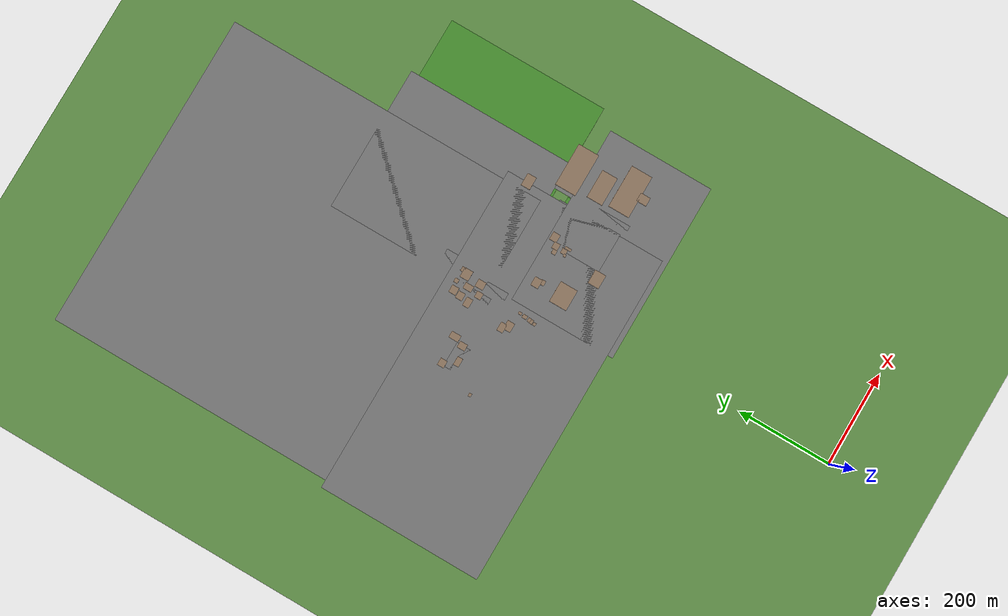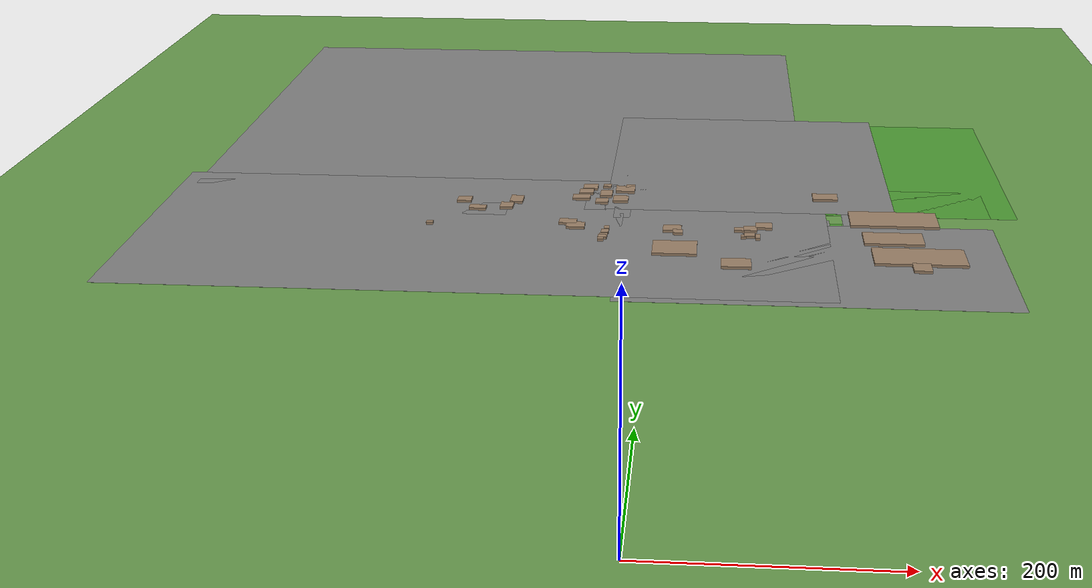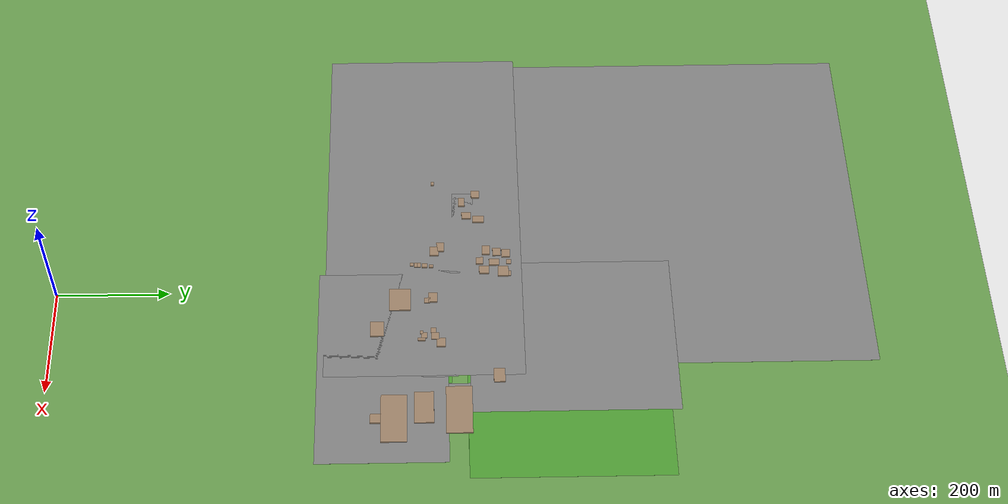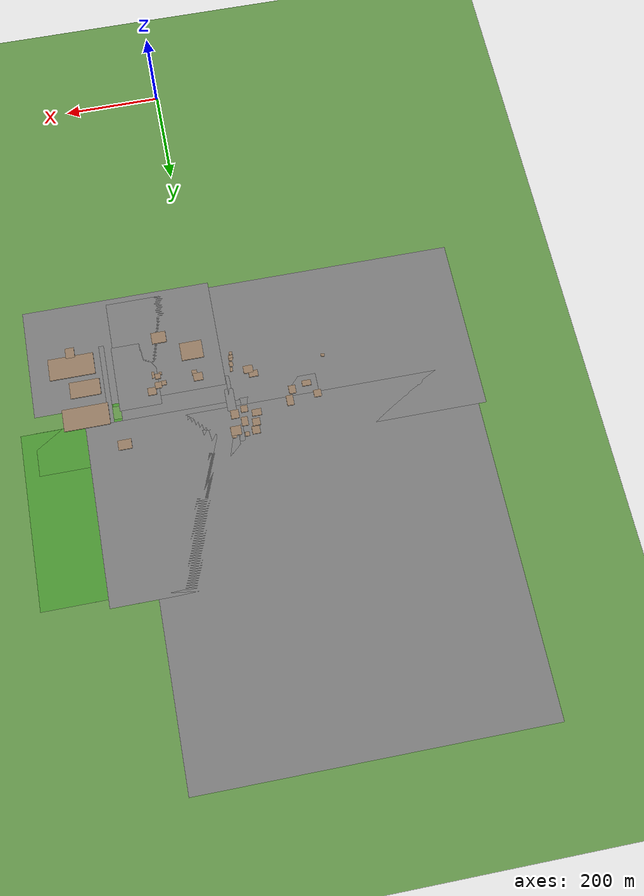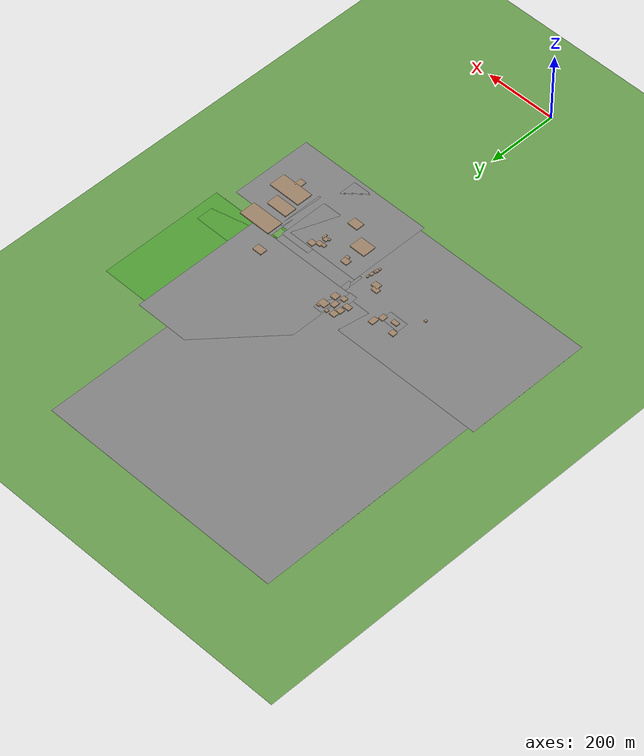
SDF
<sdf version="1.9">
 <world name="kimje_farmland">
  <model name="ground_plane">
   <static>true</static>
   <link name="link">
    <collision name="collision">
     <geometry><plane><normal>0 0 1</normal><size>2000 2000</size></plane></geometry>
    </collision>
    <visual name="visual">
     <geometry><plane><normal>0 0 1</normal><size>2000 2000</size></plane></geometry>
     <material><ambient>0.4 0.6 0.3 1</ambient><diffuse>0.4 0.6 0.3 1</diffuse></material>
    </visual>
   </link>
  </model>
  <model name="osm_68">
   <static>true</static>
   <pose>-68.04 760.36 0.040 0 0 0</pose>
   <link name="link">
    <collision name="collision"><geometry><box><size>23.88 65.93 0.080</size></box></geometry></collision>
    <visual name="visual">
     <geometry><box><size>23.88 65.93 0.080</size></box></geometry>
     <material><ambient>0.5 0.5 0.5 1</ambient><diffuse>0.5 0.5 0.5 1</diffuse></material>
    </visual>
   </link>
  </model>
  <model name="osm_70">
   <static>true</static>
   <pose>-181.48 1091.65 0.040 0 0 0</pose>
   <link name="link">
    <collision name="collision"><geometry><box><size>682.88 700.15 0.080</size></box></geometry></collision>
    <visual name="visual">
     <geometry><box><size>682.88 700.15 0.080</size></box></geometry>
     <material><ambient>0.5 0.5 0.5 1</ambient><diffuse>0.5 0.5 0.5 1</diffuse></material>
    </visual>
   </link>
  </model>
  <model name="osm_71">
   <static>true</static>
   <pose>-41.13 788.18 0.040 0 0 0</pose>
   <link name="link">
    <collision name="collision"><geometry><box><size>24.86 55.10 0.080</size></box></geometry></collision>
    <visual name="visual">
     <geometry><box><size>24.86 55.10 0.080</size></box></geometry>
     <material><ambient>0.5 0.5 0.5 1</ambient><diffuse>0.5 0.5 0.5 1</diffuse></material>
    </visual>
   </link>
  </model>
  <model name="osm_73">
   <static>true</static>
   <pose>97.49 910.80 0.040 0 0 0</pose>
   <link name="link">
    <collision name="collision"><geometry><box><size>310.08 360.59 0.080</size></box></geometry></collision>
    <visual name="visual">
     <geometry><box><size>310.08 360.59 0.080</size></box></geometry>
     <material><ambient>0.5 0.5 0.5 1</ambient><diffuse>0.5 0.5 0.5 1</diffuse></material>
    </visual>
   </link>
  </model>
  <model name="osm_74">
   <static>true</static>
   <pose>-28.52 824.47 0.040 0 0 0</pose>
   <link name="link">
    <collision name="collision"><geometry><box><size>28.11 53.99 0.080</size></box></geometry></collision>
    <visual name="visual">
     <geometry><box><size>28.11 53.99 0.080</size></box></geometry>
     <material><ambient>0.5 0.5 0.5 1</ambient><diffuse>0.5 0.5 0.5 1</diffuse></material>
    </visual>
   </link>
  </model>
  <model name="osm_82">
   <static>true</static>
   <pose>-180.37 651.19 0.040 0 0 0</pose>
   <link name="link">
    <collision name="collision"><geometry><box><size>717.23 350.45 0.080</size></box></geometry></collision>
    <visual name="visual">
     <geometry><box><size>717.23 350.45 0.080</size></box></geometry>
     <material><ambient>0.5 0.5 0.5 1</ambient><diffuse>0.5 0.5 0.5 1</diffuse></material>
    </visual>
   </link>
  </model>
  <model name="osm_87">
   <static>true</static>
   <pose>-189.08 722.50 0.040 0 0 0</pose>
   <link name="link">
    <collision name="collision"><geometry><box><size>53.18 38.65 0.080</size></box></geometry></collision>
    <visual name="visual">
     <geometry><box><size>53.18 38.65 0.080</size></box></geometry>
     <material><ambient>0.5 0.5 0.5 1</ambient><diffuse>0.5 0.5 0.5 1</diffuse></material>
    </visual>
   </link>
  </model>
  <model name="osm_98">
   <static>true</static>
   <pose>-40.50 695.89 0.040 0 0 0</pose>
   <link name="link">
    <collision name="collision"><geometry><box><size>7.44 41.09 0.080</size></box></geometry></collision>
    <visual name="visual">
     <geometry><box><size>7.44 41.09 0.080</size></box></geometry>
     <material><ambient>0.5 0.5 0.5 1</ambient><diffuse>0.5 0.5 0.5 1</diffuse></material>
    </visual>
   </link>
  </model>
  <model name="osm_99">
   <static>true</static>
   <pose>156.71 578.80 0.040 0 0 0</pose>
   <link name="link">
    <collision name="collision"><geometry><box><size>385.17 227.95 0.080</size></box></geometry></collision>
    <visual name="visual">
     <geometry><box><size>385.17 227.95 0.080</size></box></geometry>
     <material><ambient>0.5 0.5 0.5 1</ambient><diffuse>0.5 0.5 0.5 1</diffuse></material>
    </visual>
   </link>
  </model>
  <model name="osm_100">
   <static>true</static>
   <pose>-38.52 726.79 0.040 0 0 0</pose>
   <link name="link">
    <collision name="collision"><geometry><box><size>17.57 46.62 0.080</size></box></geometry></collision>
    <visual name="visual">
     <geometry><box><size>17.57 46.62 0.080</size></box></geometry>
     <material><ambient>0.5 0.5 0.5 1</ambient><diffuse>0.5 0.5 0.5 1</diffuse></material>
    </visual>
   </link>
  </model>
  <model name="osm_297">
   <static>true</static>
   <pose>-212.02 746.32 1.500 0 0 0</pose>
   <link name="link">
    <collision name="collision"><geometry><box><size>15.36 14.61 3.000</size></box></geometry></collision>
    <visual name="visual">
     <geometry><box><size>15.36 14.61 3.000</size></box></geometry>
     <material><ambient>0.6 0.5 0.4 1</ambient><diffuse>0.6 0.5 0.4 1</diffuse></material>
    </visual>
   </link>
  </model>
  <model name="osm_298">
   <static>true</static>
   <pose>-194.42 720.84 1.500 0 0 0</pose>
   <link name="link">
    <collision name="collision"><geometry><box><size>18.18 11.59 3.000</size></box></geometry></collision>
    <visual name="visual">
     <geometry><box><size>18.18 11.59 3.000</size></box></geometry>
     <material><ambient>0.6 0.5 0.4 1</ambient><diffuse>0.6 0.5 0.4 1</diffuse></material>
    </visual>
   </link>
  </model>
  <model name="osm_299">
   <static>true</static>
   <pose>-163.76 729.19 1.500 0 0 0</pose>
   <link name="link">
    <collision name="collision"><geometry><box><size>13.95 16.78 3.000</size></box></geometry></collision>
    <visual name="visual">
     <geometry><box><size>13.95 16.78 3.000</size></box></geometry>
     <material><ambient>0.6 0.5 0.4 1</ambient><diffuse>0.6 0.5 0.4 1</diffuse></material>
    </visual>
   </link>
  </model>
  <model name="osm_300">
   <static>true</static>
   <pose>-155.19 750.99 1.500 0 0 0</pose>
   <link name="link">
    <collision name="collision"><geometry><box><size>13.95 20.92 3.000</size></box></geometry></collision>
    <visual name="visual">
     <geometry><box><size>13.95 20.92 3.000</size></box></geometry>
     <material><ambient>0.6 0.5 0.4 1</ambient><diffuse>0.6 0.5 0.4 1</diffuse></material>
    </visual>
   </link>
  </model>
  <model name="osm_301">
   <static>true</static>
   <pose>-93.44 681.18 1.500 0 0 0</pose>
   <link name="link">
    <collision name="collision"><geometry><box><size>18.59 13.24 3.000</size></box></geometry></collision>
    <visual name="visual">
     <geometry><box><size>18.59 13.24 3.000</size></box></geometry>
     <material><ambient>0.6 0.5 0.4 1</ambient><diffuse>0.6 0.5 0.4 1</diffuse></material>
    </visual>
   </link>
  </model>
  <model name="osm_302">
   <static>true</static>
   <pose>-84.63 670.28 1.500 0 0 0</pose>
   <link name="link">
    <collision name="collision"><geometry><box><size>19.39 15.72 3.000</size></box></geometry></collision>
    <visual name="visual">
     <geometry><box><size>19.39 15.72 3.000</size></box></geometry>
     <material><ambient>0.6 0.5 0.4 1</ambient><diffuse>0.6 0.5 0.4 1</diffuse></material>
    </visual>
   </link>
  </model>
  <model name="osm_303">
   <static>true</static>
   <pose>-51.50 664.66 1.500 0 0 0</pose>
   <link name="link">
    <collision name="collision"><geometry><box><size>5.29 7.49 3.000</size></box></geometry></collision>
    <visual name="visual">
     <geometry><box><size>5.29 7.49 3.000</size></box></geometry>
     <material><ambient>0.6 0.5 0.4 1</ambient><diffuse>0.6 0.5 0.4 1</diffuse></material>
    </visual>
   </link>
  </model>
  <model name="osm_304">
   <static>true</static>
   <pose>-52.83 653.23 1.500 0 0 0</pose>
   <link name="link">
    <collision name="collision"><geometry><box><size>7.74 9.68 3.000</size></box></geometry></collision>
    <visual name="visual">
     <geometry><box><size>7.74 9.68 3.000</size></box></geometry>
     <material><ambient>0.6 0.5 0.4 1</ambient><diffuse>0.6 0.5 0.4 1</diffuse></material>
    </visual>
   </link>
  </model>
  <model name="osm_305">
   <static>true</static>
   <pose>16.63 667.22 1.500 0 0 0</pose>
   <link name="link">
    <collision name="collision"><geometry><box><size>19.34 16.13 3.000</size></box></geometry></collision>
    <visual name="visual">
     <geometry><box><size>19.34 16.13 3.000</size></box></geometry>
     <material><ambient>0.6 0.5 0.4 1</ambient><diffuse>0.6 0.5 0.4 1</diffuse></material>
    </visual>
   </link>
  </model>
  <model name="osm_306">
   <static>true</static>
   <pose>22.54 657.25 1.500 0 0 0</pose>
   <link name="link">
    <collision name="collision"><geometry><box><size>10.46 10.52 3.000</size></box></geometry></collision>
    <visual name="visual">
     <geometry><box><size>10.46 10.52 3.000</size></box></geometry>
     <material><ambient>0.6 0.5 0.4 1</ambient><diffuse>0.6 0.5 0.4 1</diffuse></material>
    </visual>
   </link>
  </model>
  <model name="osm_307">
   <static>true</static>
   <pose>85.95 667.91 1.500 0 0 0</pose>
   <link name="link">
    <collision name="collision"><geometry><box><size>9.79 9.09 3.000</size></box></geometry></collision>
    <visual name="visual">
     <geometry><box><size>9.79 9.09 3.000</size></box></geometry>
     <material><ambient>0.6 0.5 0.4 1</ambient><diffuse>0.6 0.5 0.4 1</diffuse></material>
    </visual>
   </link>
  </model>
  <model name="osm_308">
   <static>true</static>
   <pose>97.68 670.58 1.500 0 0 0</pose>
   <link name="link">
    <collision name="collision"><geometry><box><size>13.80 13.05 3.000</size></box></geometry></collision>
    <visual name="visual">
     <geometry><box><size>13.80 13.05 3.000</size></box></geometry>
     <material><ambient>0.6 0.5 0.4 1</ambient><diffuse>0.6 0.5 0.4 1</diffuse></material>
    </visual>
   </link>
  </model>
  <model name="osm_309">
   <static>true</static>
   <pose>111.77 681.25 1.500 0 0 0</pose>
   <link name="link">
    <collision name="collision"><geometry><box><size>17.14 15.54 3.000</size></box></geometry></collision>
    <visual name="visual">
     <geometry><box><size>17.14 15.54 3.000</size></box></geometry>
     <material><ambient>0.6 0.5 0.4 1</ambient><diffuse>0.6 0.5 0.4 1</diffuse></material>
    </visual>
   </link>
  </model>
  <model name="osm_310">
   <static>true</static>
   <pose>96.23 651.52 1.500 0 0 0</pose>
   <link name="link">
    <collision name="collision"><geometry><box><size>10.99 10.88 3.000</size></box></geometry></collision>
    <visual name="visual">
     <geometry><box><size>10.99 10.88 3.000</size></box></geometry>
     <material><ambient>0.6 0.5 0.4 1</ambient><diffuse>0.6 0.5 0.4 1</diffuse></material>
    </visual>
   </link>
  </model>
  <model name="osm_311">
   <static>true</static>
   <pose>104.84 647.15 1.500 0 0 0</pose>
   <link name="link">
    <collision name="collision"><geometry><box><size>5.11 13.30 3.000</size></box></geometry></collision>
    <visual name="visual">
     <geometry><box><size>5.11 13.30 3.000</size></box></geometry>
     <material><ambient>0.6 0.5 0.4 1</ambient><diffuse>0.6 0.5 0.4 1</diffuse></material>
    </visual>
   </link>
  </model>
  <model name="osm_312">
   <static>true</static>
   <pose>90.17 646.62 1.500 0 0 0</pose>
   <link name="link">
    <collision name="collision"><geometry><box><size>5.70 5.68 3.000</size></box></geometry></collision>
    <visual name="visual">
     <geometry><box><size>5.70 5.68 3.000</size></box></geometry>
     <material><ambient>0.6 0.5 0.4 1</ambient><diffuse>0.6 0.5 0.4 1</diffuse></material>
    </visual>
   </link>
  </model>
  <model name="osm_313">
   <static>true</static>
   <pose>20.57 608.59 1.500 0 0 0</pose>
   <link name="link">
    <collision name="collision"><geometry><box><size>45.09 37.76 3.000</size></box></geometry></collision>
    <visual name="visual">
     <geometry><box><size>45.09 37.76 3.000</size></box></geometry>
     <material><ambient>0.6 0.5 0.4 1</ambient><diffuse>0.6 0.5 0.4 1</diffuse></material>
    </visual>
   </link>
  </model>
  <model name="osm_314">
   <static>true</static>
   <pose>-53.85 642.54 1.500 0 0 0</pose>
   <link name="link">
    <collision name="collision"><geometry><box><size>8.34 5.93 3.000</size></box></geometry></collision>
    <visual name="visual">
     <geometry><box><size>8.34 5.93 3.000</size></box></geometry>
     <material><ambient>0.6 0.5 0.4 1</ambient><diffuse>0.6 0.5 0.4 1</diffuse></material>
    </visual>
   </link>
  </model>
  <model name="osm_315">
   <static>true</static>
   <pose>-54.54 637.32 1.500 0 0 0</pose>
   <link name="link">
    <collision name="collision"><geometry><box><size>8.99 6.75 3.000</size></box></geometry></collision>
    <visual name="visual">
     <geometry><box><size>8.99 6.75 3.000</size></box></geometry>
     <material><ambient>0.6 0.5 0.4 1</ambient><diffuse>0.6 0.5 0.4 1</diffuse></material>
    </visual>
   </link>
  </model>
  <model name="osm_316">
   <static>true</static>
   <pose>-55.88 629.84 1.500 0 0 0</pose>
   <link name="link">
    <collision name="collision"><geometry><box><size>6.27 6.08 3.000</size></box></geometry></collision>
    <visual name="visual">
     <geometry><box><size>6.27 6.08 3.000</size></box></geometry>
     <material><ambient>0.6 0.5 0.4 1</ambient><diffuse>0.6 0.5 0.4 1</diffuse></material>
    </visual>
   </link>
  </model>
  <model name="osm_339">
   <static>true</static>
   <pose>82.03 568.72 1.500 0 0 0</pose>
   <link name="link">
    <collision name="collision"><geometry><box><size>29.76 23.73 3.000</size></box></geometry></collision>
    <visual name="visual">
     <geometry><box><size>29.76 23.73 3.000</size></box></geometry>
     <material><ambient>0.6 0.5 0.4 1</ambient><diffuse>0.6 0.5 0.4 1</diffuse></material>
    </visual>
   </link>
  </model>
  <model name="osm_402">
   <static>true</static>
   <pose>-238.20 668.18 1.500 0 0 0</pose>
   <link name="link">
    <collision name="collision"><geometry><box><size>7.13 5.94 3.000</size></box></geometry></collision>
    <visual name="visual">
     <geometry><box><size>7.13 5.94 3.000</size></box></geometry>
     <material><ambient>0.6 0.5 0.4 1</ambient><diffuse>0.6 0.5 0.4 1</diffuse></material>
    </visual>
   </link>
  </model>
  <model name="osm_403">
   <static>true</static>
   <pose>138.67 641.51 0.040 0 0 0</pose>
   <link name="link">
    <collision name="collision"><geometry><box><size>84.48 136.81 0.080</size></box></geometry></collision>
    <visual name="visual">
     <geometry><box><size>84.48 136.81 0.080</size></box></geometry>
     <material><ambient>0.5 0.5 0.5 1</ambient><diffuse>0.5 0.5 0.5 1</diffuse></material>
    </visual>
   </link>
  </model>
  <model name="osm_407">
   <static>true</static>
   <pose>-107.57 739.73 0.025 0 0 0</pose>
   <link name="link">
    <collision name="collision"><geometry><box><size>52.87 47.27 0.050</size></box></geometry></collision>
    <visual name="visual">
     <geometry><box><size>52.87 47.27 0.050</size></box></geometry>
     <material><ambient>0.2 0.5 0.1 1</ambient><diffuse>0.2 0.5 0.1 1</diffuse></material>
    </visual>
   </link>
  </model>
  <model name="osm_408">
   <static>true</static>
   <pose>113.44 601.09 0.025 0 0 0</pose>
   <link name="link">
    <collision name="collision"><geometry><box><size>47.46 51.82 0.050</size></box></geometry></collision>
    <visual name="visual">
     <geometry><box><size>47.46 51.82 0.050</size></box></geometry>
     <material><ambient>0.3 0.6 0.2 1</ambient><diffuse>0.3 0.6 0.2 1</diffuse></material>
    </visual>
   </link>
  </model>
  <model name="osm_950">
   <static>true</static>
   <pose>248.25 710.58 1.500 0 0 0</pose>
   <link name="link">
    <collision name="collision"><geometry><box><size>92.00 45.36 3.000</size></box></geometry></collision>
    <visual name="visual">
     <geometry><box><size>92.00 45.36 3.000</size></box></geometry>
     <material><ambient>0.6 0.5 0.4 1</ambient><diffuse>0.6 0.5 0.4 1</diffuse></material>
    </visual>
   </link>
  </model>
  <model name="osm_951">
   <static>true</static>
   <pose>263.94 598.90 1.500 0 0 0</pose>
   <link name="link">
    <collision name="collision"><geometry><box><size>92.05 45.47 3.000</size></box></geometry></collision>
    <visual name="visual">
     <geometry><box><size>92.05 45.47 3.000</size></box></geometry>
     <material><ambient>0.6 0.5 0.4 1</ambient><diffuse>0.6 0.5 0.4 1</diffuse></material>
    </visual>
   </link>
  </model>
  <model name="osm_952">
   <static>true</static>
   <pose>242.83 650.31 1.500 0 0 0</pose>
   <link name="link">
    <collision name="collision"><geometry><box><size>61.12 33.99 3.000</size></box></geometry></collision>
    <visual name="visual">
     <geometry><box><size>61.12 33.99 3.000</size></box></geometry>
     <material><ambient>0.6 0.5 0.4 1</ambient><diffuse>0.6 0.5 0.4 1</diffuse></material>
    </visual>
   </link>
  </model>
  <model name="osm_993">
   <static>true</static>
   <pose>263.73 569.12 1.500 0 0 0</pose>
   <link name="link">
    <collision name="collision"><geometry><box><size>18.08 21.67 3.000</size></box></geometry></collision>
    <visual name="visual">
     <geometry><box><size>18.08 21.67 3.000</size></box></geometry>
     <material><ambient>0.6 0.5 0.4 1</ambient><diffuse>0.6 0.5 0.4 1</diffuse></material>
    </visual>
   </link>
  </model>
  <model name="osm_1154">
   <static>true</static>
   <pose>199.95 647.93 0.040 0 0 0</pose>
   <link name="link">
    <collision name="collision"><geometry><box><size>10.17 165.74 0.080</size></box></geometry></collision>
    <visual name="visual">
     <geometry><box><size>10.17 165.74 0.080</size></box></geometry>
     <material><ambient>0.5 0.5 0.5 1</ambient><diffuse>0.5 0.5 0.5 1</diffuse></material>
    </visual>
   </link>
  </model>
  <model name="osm_1375">
   <static>true</static>
   <pose>150.22 631.65 0.025 0 0 0</pose>
   <link name="link">
    <collision name="collision"><geometry><box><size>86.51 134.67 0.050</size></box></geometry></collision>
    <visual name="visual">
     <geometry><box><size>86.51 134.67 0.050</size></box></geometry>
     <material><ambient>0.3 0.6 0.2 1</ambient><diffuse>0.3 0.6 0.2 1</diffuse></material>
    </visual>
   </link>
  </model>
  <model name="osm_1525">
   <static>true</static>
   <pose>180.51 780.88 1.500 0 0 0</pose>
   <link name="link">
    <collision name="collision"><geometry><box><size>27.05 19.67 3.000</size></box></geometry></collision>
    <visual name="visual">
     <geometry><box><size>27.05 19.67 3.000</size></box></geometry>
     <material><ambient>0.6 0.5 0.4 1</ambient><diffuse>0.6 0.5 0.4 1</diffuse></material>
    </visual>
   </link>
  </model>
  <model name="osm_1534">
   <static>true</static>
   <pose>178.05 899.87 0.025 0 0 0</pose>
   <link name="link">
    <collision name="collision"><geometry><box><size>404.41 347.95 0.050</size></box></geometry></collision>
    <visual name="visual">
     <geometry><box><size>404.41 347.95 0.050</size></box></geometry>
     <material><ambient>0.3 0.6 0.2 1</ambient><diffuse>0.3 0.6 0.2 1</diffuse></material>
    </visual>
   </link>
  </model>
  <model name="osm_1535">
   <static>true</static>
   <pose>263.34 769.63 0.025 0 0 0</pose>
   <link name="link">
    <collision name="collision"><geometry><box><size>177.90 88.23 0.050</size></box></geometry></collision>
    <visual name="visual">
     <geometry><box><size>177.90 88.23 0.050</size></box></geometry>
     <material><ambient>0.3 0.6 0.2 1</ambient><diffuse>0.3 0.6 0.2 1</diffuse></material>
    </visual>
   </link>
  </model>
  <model name="osm_1780">
   <static>true</static>
   <pose>-33.58 803.08 1.500 0 0 0</pose>
   <link name="link">
    <collision name="collision"><geometry><box><size>9.56 9.28 3.000</size></box></geometry></collision>
    <visual name="visual">
     <geometry><box><size>9.56 9.28 3.000</size></box></geometry>
     <material><ambient>0.6 0.5 0.4 1</ambient><diffuse>0.6 0.5 0.4 1</diffuse></material>
    </visual>
   </link>
  </model>
  <model name="osm_1781">
   <static>true</static>
   <pose>-38.67 793.47 1.500 0 0 0</pose>
   <link name="link">
    <collision name="collision"><geometry><box><size>20.88 18.82 3.000</size></box></geometry></collision>
    <visual name="visual">
     <geometry><box><size>20.88 18.82 3.000</size></box></geometry>
     <material><ambient>0.6 0.5 0.4 1</ambient><diffuse>0.6 0.5 0.4 1</diffuse></material>
    </visual>
   </link>
  </model>
  <model name="osm_1782">
   <static>true</static>
   <pose>-59.43 804.04 1.500 0 0 0</pose>
   <link name="link">
    <collision name="collision"><geometry><box><size>8.78 8.86 3.000</size></box></geometry></collision>
    <visual name="visual">
     <geometry><box><size>8.78 8.86 3.000</size></box></geometry>
     <material><ambient>0.6 0.5 0.4 1</ambient><diffuse>0.6 0.5 0.4 1</diffuse></material>
    </visual>
   </link>
  </model>
  <model name="osm_1783">
   <static>true</static>
   <pose>-58.87 777.37 1.500 0 0 0</pose>
   <link name="link">
    <collision name="collision"><geometry><box><size>13.06 18.15 3.000</size></box></geometry></collision>
    <visual name="visual">
     <geometry><box><size>13.06 18.15 3.000</size></box></geometry>
     <material><ambient>0.6 0.5 0.4 1</ambient><diffuse>0.6 0.5 0.4 1</diffuse></material>
    </visual>
   </link>
  </model>
  <model name="osm_1784">
   <static>true</static>
   <pose>-42.13 759.35 1.500 0 0 0</pose>
   <link name="link">
    <collision name="collision"><geometry><box><size>16.35 17.56 3.000</size></box></geometry></collision>
    <visual name="visual">
     <geometry><box><size>16.35 17.56 3.000</size></box></geometry>
     <material><ambient>0.6 0.5 0.4 1</ambient><diffuse>0.6 0.5 0.4 1</diffuse></material>
    </visual>
   </link>
  </model>
  <model name="osm_1785">
   <static>true</static>
   <pose>-62.24 751.69 1.500 0 0 0</pose>
   <link name="link">
    <collision name="collision"><geometry><box><size>13.80 13.43 3.000</size></box></geometry></collision>
    <visual name="visual">
     <geometry><box><size>13.80 13.43 3.000</size></box></geometry>
     <material><ambient>0.6 0.5 0.4 1</ambient><diffuse>0.6 0.5 0.4 1</diffuse></material>
    </visual>
   </link>
  </model>
  <model name="osm_1786">
   <static>true</static>
   <pose>-77.76 799.05 1.500 0 0 0</pose>
   <link name="link">
    <collision name="collision"><geometry><box><size>16.02 15.44 3.000</size></box></geometry></collision>
    <visual name="visual">
     <geometry><box><size>16.02 15.44 3.000</size></box></geometry>
     <material><ambient>0.6 0.5 0.4 1</ambient><diffuse>0.6 0.5 0.4 1</diffuse></material>
    </visual>
   </link>
  </model>
  <model name="osm_1787">
   <static>true</static>
   <pose>-81.16 782.59 1.500 0 0 0</pose>
   <link name="link">
    <collision name="collision"><geometry><box><size>15.54 14.73 3.000</size></box></geometry></collision>
    <visual name="visual">
     <geometry><box><size>15.54 14.73 3.000</size></box></geometry>
     <material><ambient>0.6 0.5 0.4 1</ambient><diffuse>0.6 0.5 0.4 1</diffuse></material>
    </visual>
   </link>
  </model>
  <model name="osm_1788">
   <static>true</static>
   <pose>-85.37 763.40 1.500 0 0 0</pose>
   <link name="link">
    <collision name="collision"><geometry><box><size>18.93 13.56 3.000</size></box></geometry></collision>
    <visual name="visual">
     <geometry><box><size>18.93 13.56 3.000</size></box></geometry>
     <material><ambient>0.6 0.5 0.4 1</ambient><diffuse>0.6 0.5 0.4 1</diffuse></material>
    </visual>
   </link>
  </model>
 </world>
</sdf>
